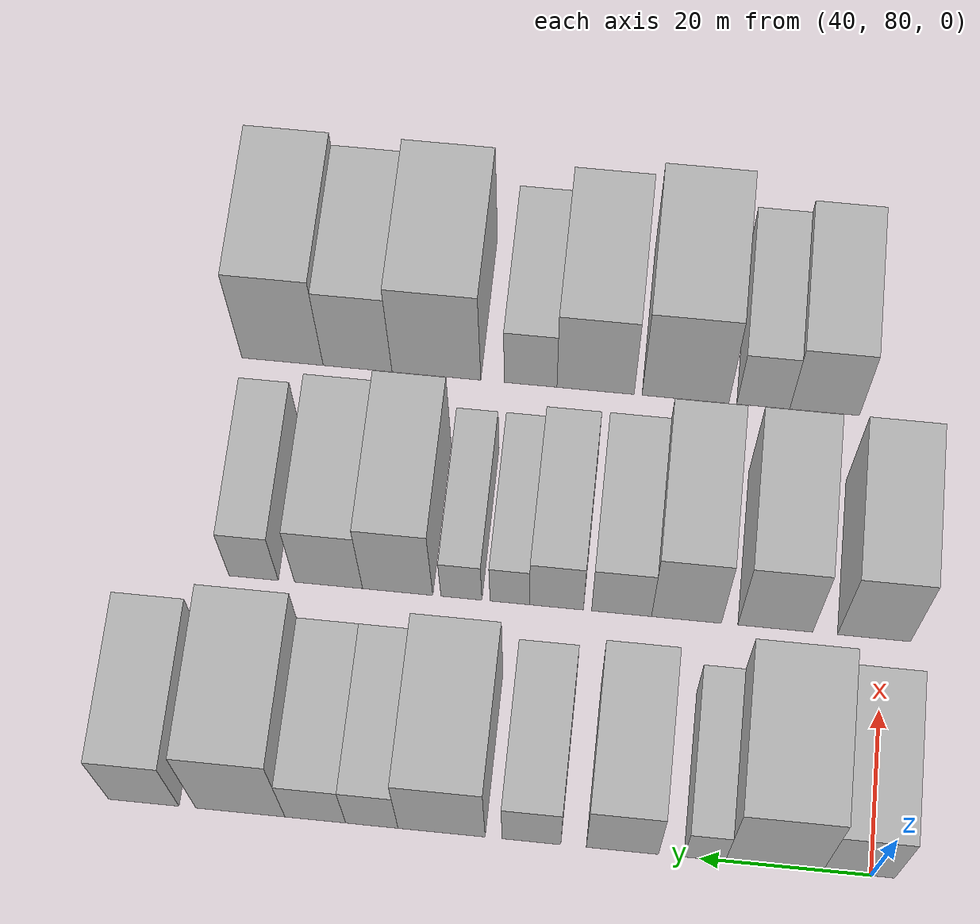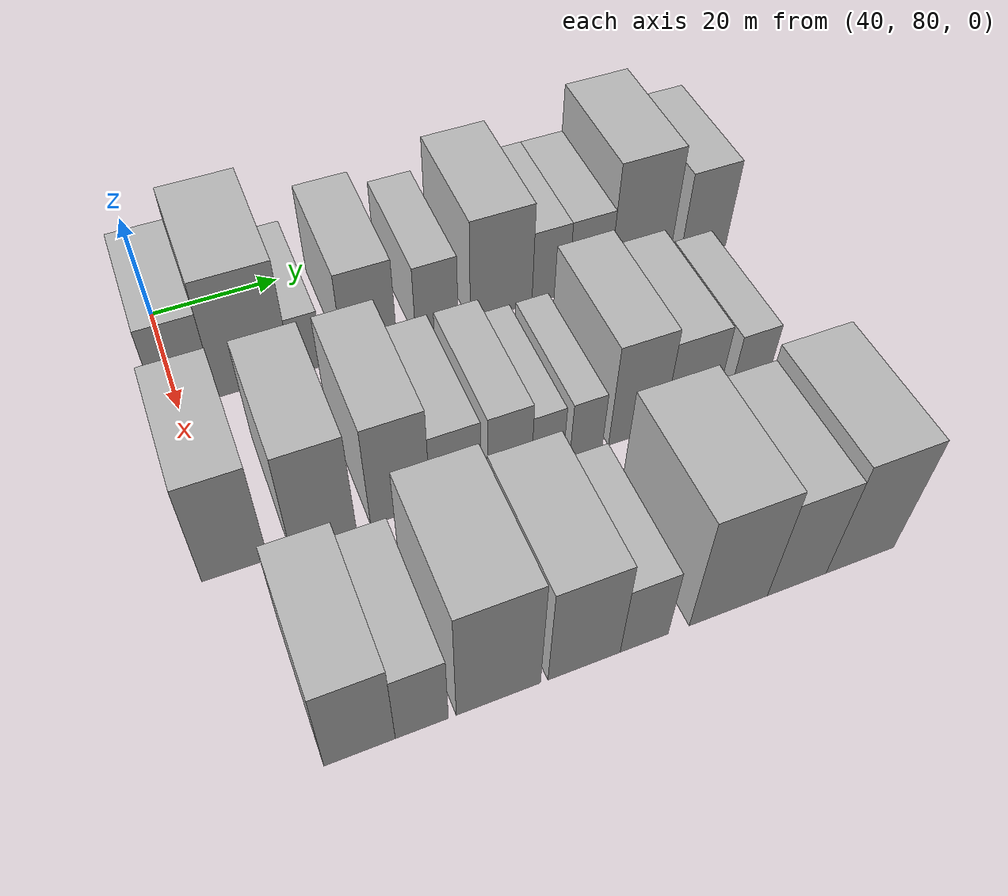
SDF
<sdf version="1.6">
 <world name="default">
  <model name="building_45">
   <static>1</static>
   <pose>50.0000 81.4256 0 0.000000 0.000000 0.000000</pose>
   <link name="link">
    <pose>0 0 9.00 0 0 0</pose>
    <collision name="collision"><geometry><box><size>20.0000 8.3960 18.0000</size></box></geometry></collision>
    <visual name="visual">
     <cast_shadows>0</cast_shadows>
     <geometry><box><size>20.0000 8.3960 18.0000</size></box></geometry>
     <material>
      <script>
       <uri>model://HANNAS_wall/materials/scripts</uri>
       <uri>model://HANNAS_wall/materials/textures</uri>
       <name>vrc/HANNAS_wall</name>
      </script>
     </material>
    </visual>
   </link>
  </model>
  <model name="building_46">
   <static>1</static>
   <pose>50.0000 91.3448 0 0.000000 0.000000 0.000000</pose>
   <link name="link">
    <pose>0 0 12.00 0 0 0</pose>
    <collision name="collision"><geometry><box><size>20.0000 11.4425 24.0000</size></box></geometry></collision>
    <visual name="visual">
     <cast_shadows>0</cast_shadows>
     <geometry><box><size>20.0000 11.4425 24.0000</size></box></geometry>
     <material>
      <script>
       <uri>model://HANNAS_wall/materials/scripts</uri>
       <uri>model://HANNAS_wall/materials/textures</uri>
       <name>vrc/HANNAS_wall</name>
      </script>
     </material>
    </visual>
   </link>
  </model>
  <model name="building_47">
   <static>1</static>
   <pose>50.0000 99.4876 0 0.000000 0.000000 0.000000</pose>
   <link name="link">
    <pose>0 0 6.00 0 0 0</pose>
    <collision name="collision"><geometry><box><size>20.0000 4.8430 12.0000</size></box></geometry></collision>
    <visual name="visual">
     <cast_shadows>0</cast_shadows>
     <geometry><box><size>20.0000 4.8430 12.0000</size></box></geometry>
     <material>
      <script>
       <uri>model://HANNAS_wall/materials/scripts</uri>
       <uri>model://HANNAS_wall/materials/textures</uri>
       <name>vrc/HANNAS_wall</name>
      </script>
     </material>
    </visual>
   </link>
  </model>
  <model name="building_48">
   <static>1</static>
   <pose>50.0000 109.1554 0 0.000000 0.000000 0.000000</pose>
   <link name="link">
    <pose>0 0 9.00 0 0 0</pose>
    <collision name="collision"><geometry><box><size>20.0000 8.4926 18.0000</size></box></geometry></collision>
    <visual name="visual">
     <cast_shadows>0</cast_shadows>
     <geometry><box><size>20.0000 8.4926 18.0000</size></box></geometry>
     <material>
      <script>
       <uri>model://HANNAS_wall/materials/scripts</uri>
       <uri>model://HANNAS_wall/materials/textures</uri>
       <name>vrc/HANNAS_wall</name>
      </script>
     </material>
    </visual>
   </link>
  </model>
  <model name="building_49">
   <static>1</static>
   <pose>50.0000 119.8619 0 0.000000 0.000000 0.000000</pose>
   <link name="link">
    <pose>0 0 7.50 0 0 0</pose>
    <collision name="collision"><geometry><box><size>20.0000 6.9204 15.0000</size></box></geometry></collision>
    <visual name="visual">
     <cast_shadows>0</cast_shadows>
     <geometry><box><size>20.0000 6.9204 15.0000</size></box></geometry>
     <material>
      <script>
       <uri>model://HANNAS_wall/materials/scripts</uri>
       <uri>model://HANNAS_wall/materials/textures</uri>
       <name>vrc/HANNAS_wall</name>
      </script>
     </material>
    </visual>
   </link>
  </model>
  <model name="building_50">
   <static>1</static>
   <pose>50.0000 130.4726 0 0.000000 0.000000 0.000000</pose>
   <link name="link">
    <pose>0 0 10.50 0 0 0</pose>
    <collision name="collision"><geometry><box><size>20.0000 10.3011 21.0000</size></box></geometry></collision>
    <visual name="visual">
     <cast_shadows>0</cast_shadows>
     <geometry><box><size>20.0000 10.3011 21.0000</size></box></geometry>
     <material>
      <script>
       <uri>model://HANNAS_wall/materials/scripts</uri>
       <uri>model://HANNAS_wall/materials/textures</uri>
       <name>vrc/HANNAS_wall</name>
      </script>
     </material>
    </visual>
   </link>
  </model>
  <model name="building_51">
   <static>1</static>
   <pose>50.0000 138.7285 0 0.000000 0.000000 0.000000</pose>
   <link name="link">
    <pose>0 0 7.50 0 0 0</pose>
    <collision name="collision"><geometry><box><size>20.0000 6.2106 15.0000</size></box></geometry></collision>
    <visual name="visual">
     <cast_shadows>0</cast_shadows>
     <geometry><box><size>20.0000 6.2106 15.0000</size></box></geometry>
     <material>
      <script>
       <uri>model://HANNAS_wall/materials/scripts</uri>
       <uri>model://HANNAS_wall/materials/textures</uri>
       <name>vrc/HANNAS_wall</name>
      </script>
     </material>
    </visual>
   </link>
  </model>
  <model name="building_52">
   <static>1</static>
   <pose>50.0000 145.4337 0 0.000000 0.000000 0.000000</pose>
   <link name="link">
    <pose>0 0 7.50 0 0 0</pose>
    <collision name="collision"><geometry><box><size>20.0000 7.1999 15.0000</size></box></geometry></collision>
    <visual name="visual">
     <cast_shadows>0</cast_shadows>
     <geometry><box><size>20.0000 7.1999 15.0000</size></box></geometry>
     <material>
      <script>
       <uri>model://HANNAS_wall/materials/scripts</uri>
       <uri>model://HANNAS_wall/materials/textures</uri>
       <name>vrc/HANNAS_wall</name>
      </script>
     </material>
    </visual>
   </link>
  </model>
  <model name="building_53">
   <static>1</static>
   <pose>50.0000 154.3404 0 0.000000 0.000000 0.000000</pose>
   <link name="link">
    <pose>0 0 12.00 0 0 0</pose>
    <collision name="collision"><geometry><box><size>20.0000 10.6135 24.0000</size></box></geometry></collision>
    <visual name="visual">
     <cast_shadows>0</cast_shadows>
     <geometry><box><size>20.0000 10.6135 24.0000</size></box></geometry>
     <material>
      <script>
       <uri>model://HANNAS_wall/materials/scripts</uri>
       <uri>model://HANNAS_wall/materials/textures</uri>
       <name>vrc/HANNAS_wall</name>
      </script>
     </material>
    </visual>
   </link>
  </model>
  <model name="building_54">
   <static>1</static>
   <pose>50.0000 165.8436 0 0.000000 0.000000 0.000000</pose>
   <link name="link">
    <pose>0 0 9.00 0 0 0</pose>
    <collision name="collision"><geometry><box><size>20.0000 8.3927 18.0000</size></box></geometry></collision>
    <visual name="visual">
     <cast_shadows>0</cast_shadows>
     <geometry><box><size>20.0000 8.3927 18.0000</size></box></geometry>
     <material>
      <script>
       <uri>model://HANNAS_wall/materials/scripts</uri>
       <uri>model://HANNAS_wall/materials/textures</uri>
       <name>vrc/HANNAS_wall</name>
      </script>
     </material>
    </visual>
   </link>
  </model>
  <model name="building_120">
   <static>1</static>
   <pose>79.0000 81.0426 0 0.000000 0.000000 0.000000</pose>
   <link name="link">
    <pose>0 0 10.50 0 0 0</pose>
    <collision name="collision"><geometry><box><size>20.0000 8.8695 21.0000</size></box></geometry></collision>
    <visual name="visual">
     <cast_shadows>0</cast_shadows>
     <geometry><box><size>20.0000 8.8695 21.0000</size></box></geometry>
     <material>
      <script>
       <uri>model://HANNAS_wall/materials/scripts</uri>
       <uri>model://HANNAS_wall/materials/textures</uri>
       <name>vrc/HANNAS_wall</name>
      </script>
     </material>
    </visual>
   </link>
  </model>
  <model name="building_121">
   <static>1</static>
   <pose>79.0000 93.0280 0 0.000000 0.000000 0.000000</pose>
   <link name="link">
    <pose>0 0 10.50 0 0 0</pose>
    <collision name="collision"><geometry><box><size>20.0000 9.1012 21.0000</size></box></geometry></collision>
    <visual name="visual">
     <cast_shadows>0</cast_shadows>
     <geometry><box><size>20.0000 9.1012 21.0000</size></box></geometry>
     <material>
      <script>
       <uri>model://HANNAS_wall/materials/scripts</uri>
       <uri>model://HANNAS_wall/materials/textures</uri>
       <name>vrc/HANNAS_wall</name>
      </script>
     </material>
    </visual>
   </link>
  </model>
  <model name="building_122">
   <static>1</static>
   <pose>79.0000 103.8393 0 0.000000 0.000000 0.000000</pose>
   <link name="link">
    <pose>0 0 10.50 0 0 0</pose>
    <collision name="collision"><geometry><box><size>20.0000 8.5215 21.0000</size></box></geometry></collision>
    <visual name="visual">
     <cast_shadows>0</cast_shadows>
     <geometry><box><size>20.0000 8.5215 21.0000</size></box></geometry>
     <material>
      <script>
       <uri>model://HANNAS_wall/materials/scripts</uri>
       <uri>model://HANNAS_wall/materials/textures</uri>
       <name>vrc/HANNAS_wall</name>
      </script>
     </material>
    </visual>
   </link>
  </model>
  <model name="building_123">
   <static>1</static>
   <pose>79.0000 111.7566 0 0.000000 0.000000 0.000000</pose>
   <link name="link">
    <pose>0 0 7.50 0 0 0</pose>
    <collision name="collision"><geometry><box><size>20.0000 7.3131 15.0000</size></box></geometry></collision>
    <visual name="visual">
     <cast_shadows>0</cast_shadows>
     <geometry><box><size>20.0000 7.3131 15.0000</size></box></geometry>
     <material>
      <script>
       <uri>model://HANNAS_wall/materials/scripts</uri>
       <uri>model://HANNAS_wall/materials/textures</uri>
       <name>vrc/HANNAS_wall</name>
      </script>
     </material>
    </visual>
   </link>
  </model>
  <model name="building_124">
   <static>1</static>
   <pose>79.0000 119.6957 0 0.000000 0.000000 0.000000</pose>
   <link name="link">
    <pose>0 0 7.50 0 0 0</pose>
    <collision name="collision"><geometry><box><size>20.0000 6.5651 15.0000</size></box></geometry></collision>
    <visual name="visual">
     <cast_shadows>0</cast_shadows>
     <geometry><box><size>20.0000 6.5651 15.0000</size></box></geometry>
     <material>
      <script>
       <uri>model://HANNAS_wall/materials/scripts</uri>
       <uri>model://HANNAS_wall/materials/textures</uri>
       <name>vrc/HANNAS_wall</name>
      </script>
     </material>
    </visual>
   </link>
  </model>
  <model name="building_125">
   <static>1</static>
   <pose>79.0000 125.4051 0 0.000000 0.000000 0.000000</pose>
   <link name="link">
    <pose>0 0 6.00 0 0 0</pose>
    <collision name="collision"><geometry><box><size>20.0000 4.8538 12.0000</size></box></geometry></collision>
    <visual name="visual">
     <cast_shadows>0</cast_shadows>
     <geometry><box><size>20.0000 4.8538 12.0000</size></box></geometry>
     <material>
      <script>
       <uri>model://HANNAS_wall/materials/scripts</uri>
       <uri>model://HANNAS_wall/materials/textures</uri>
       <name>vrc/HANNAS_wall</name>
      </script>
     </material>
    </visual>
   </link>
  </model>
  <model name="building_126">
   <static>1</static>
   <pose>79.0000 131.3439 0 0.000000 0.000000 0.000000</pose>
   <link name="link">
    <pose>0 0 6.00 0 0 0</pose>
    <collision name="collision"><geometry><box><size>20.0000 5.0237 12.0000</size></box></geometry></collision>
    <visual name="visual">
     <cast_shadows>0</cast_shadows>
     <geometry><box><size>20.0000 5.0237 12.0000</size></box></geometry>
     <material>
      <script>
       <uri>model://HANNAS_wall/materials/scripts</uri>
       <uri>model://HANNAS_wall/materials/textures</uri>
       <name>vrc/HANNAS_wall</name>
      </script>
     </material>
    </visual>
   </link>
  </model>
  <model name="building_127">
   <static>1</static>
   <pose>79.0000 139.1733 0 0.000000 0.000000 0.000000</pose>
   <link name="link">
    <pose>0 0 10.50 0 0 0</pose>
    <collision name="collision"><geometry><box><size>20.0000 8.6352 21.0000</size></box></geometry></collision>
    <visual name="visual">
     <cast_shadows>0</cast_shadows>
     <geometry><box><size>20.0000 8.6352 21.0000</size></box></geometry>
     <material>
      <script>
       <uri>model://HANNAS_wall/materials/scripts</uri>
       <uri>model://HANNAS_wall/materials/textures</uri>
       <name>vrc/HANNAS_wall</name>
      </script>
     </material>
    </visual>
   </link>
  </model>
  <model name="building_128">
   <static>1</static>
   <pose>79.0000 147.6832 0 0.000000 0.000000 0.000000</pose>
   <link name="link">
    <pose>0 0 9.00 0 0 0</pose>
    <collision name="collision"><geometry><box><size>20.0000 8.3845 18.0000</size></box></geometry></collision>
    <visual name="visual">
     <cast_shadows>0</cast_shadows>
     <geometry><box><size>20.0000 8.3845 18.0000</size></box></geometry>
     <material>
      <script>
       <uri>model://HANNAS_wall/materials/scripts</uri>
       <uri>model://HANNAS_wall/materials/textures</uri>
       <name>vrc/HANNAS_wall</name>
      </script>
     </material>
    </visual>
   </link>
  </model>
  <model name="building_129">
   <static>1</static>
   <pose>79.0000 156.9123 0 0.000000 0.000000 0.000000</pose>
   <link name="link">
    <pose>0 0 7.50 0 0 0</pose>
    <collision name="collision"><geometry><box><size>20.0000 6.0739 15.0000</size></box></geometry></collision>
    <visual name="visual">
     <cast_shadows>0</cast_shadows>
     <geometry><box><size>20.0000 6.0739 15.0000</size></box></geometry>
     <material>
      <script>
       <uri>model://HANNAS_wall/materials/scripts</uri>
       <uri>model://HANNAS_wall/materials/textures</uri>
       <name>vrc/HANNAS_wall</name>
      </script>
     </material>
    </visual>
   </link>
  </model>
  <model name="building_198">
   <static>1</static>
   <pose>108.0000 88.6325 0 0.000000 0.000000 0.000000</pose>
   <link name="link">
    <pose>0 0 9.00 0 0 0</pose>
    <collision name="collision"><geometry><box><size>20.0000 8.7696 18.0000</size></box></geometry></collision>
    <visual name="visual">
     <cast_shadows>0</cast_shadows>
     <geometry><box><size>20.0000 8.7696 18.0000</size></box></geometry>
     <material>
      <script>
       <uri>model://HANNAS_wall/materials/scripts</uri>
       <uri>model://HANNAS_wall/materials/textures</uri>
       <name>vrc/HANNAS_wall</name>
      </script>
     </material>
    </visual>
   </link>
  </model>
  <model name="building_199">
   <static>1</static>
   <pose>108.0000 96.3596 0 0.000000 0.000000 0.000000</pose>
   <link name="link">
    <pose>0 0 7.50 0 0 0</pose>
    <collision name="collision"><geometry><box><size>20.0000 6.6846 15.0000</size></box></geometry></collision>
    <visual name="visual">
     <cast_shadows>0</cast_shadows>
     <geometry><box><size>20.0000 6.6846 15.0000</size></box></geometry>
     <material>
      <script>
       <uri>model://HANNAS_wall/materials/scripts</uri>
       <uri>model://HANNAS_wall/materials/textures</uri>
       <name>vrc/HANNAS_wall</name>
      </script>
     </material>
    </visual>
   </link>
  </model>
  <model name="building_200">
   <static>1</static>
   <pose>108.0000 106.1806 0 0.000000 0.000000 0.000000</pose>
   <link name="link">
    <pose>0 0 12.00 0 0 0</pose>
    <collision name="collision"><geometry><box><size>20.0000 10.9574 24.0000</size></box></geometry></collision>
    <visual name="visual">
     <cast_shadows>0</cast_shadows>
     <geometry><box><size>20.0000 10.9574 24.0000</size></box></geometry>
     <material>
      <script>
       <uri>model://HANNAS_wall/materials/scripts</uri>
       <uri>model://HANNAS_wall/materials/textures</uri>
       <name>vrc/HANNAS_wall</name>
      </script>
     </material>
    </visual>
   </link>
  </model>
  <model name="building_201">
   <static>1</static>
   <pose>108.0000 117.5495 0 0.000000 0.000000 0.000000</pose>
   <link name="link">
    <pose>0 0 10.50 0 0 0</pose>
    <collision name="collision"><geometry><box><size>20.0000 9.7804 21.0000</size></box></geometry></collision>
    <visual name="visual">
     <cast_shadows>0</cast_shadows>
     <geometry><box><size>20.0000 9.7804 21.0000</size></box></geometry>
     <material>
      <script>
       <uri>model://HANNAS_wall/materials/scripts</uri>
       <uri>model://HANNAS_wall/materials/textures</uri>
       <name>vrc/HANNAS_wall</name>
      </script>
     </material>
    </visual>
   </link>
  </model>
  <model name="building_202">
   <static>1</static>
   <pose>108.0000 125.7709 0 0.000000 0.000000 0.000000</pose>
   <link name="link">
    <pose>0 0 7.50 0 0 0</pose>
    <collision name="collision"><geometry><box><size>20.0000 6.6623 15.0000</size></box></geometry></collision>
    <visual name="visual">
     <cast_shadows>0</cast_shadows>
     <geometry><box><size>20.0000 6.6623 15.0000</size></box></geometry>
     <material>
      <script>
       <uri>model://HANNAS_wall/materials/scripts</uri>
       <uri>model://HANNAS_wall/materials/textures</uri>
       <name>vrc/HANNAS_wall</name>
      </script>
     </material>
    </visual>
   </link>
  </model>
  <model name="building_203">
   <static>1</static>
   <pose>108.0000 137.7520 0 0.000000 0.000000 0.000000</pose>
   <link name="link">
    <pose>0 0 12.00 0 0 0</pose>
    <collision name="collision"><geometry><box><size>20.0000 11.2999 24.0000</size></box></geometry></collision>
    <visual name="visual">
     <cast_shadows>0</cast_shadows>
     <geometry><box><size>20.0000 11.2999 24.0000</size></box></geometry>
     <material>
      <script>
       <uri>model://HANNAS_wall/materials/scripts</uri>
       <uri>model://HANNAS_wall/materials/textures</uri>
       <name>vrc/HANNAS_wall</name>
      </script>
     </material>
    </visual>
   </link>
  </model>
  <model name="building_204">
   <static>1</static>
   <pose>108.0000 147.7930 0 0.000000 0.000000 0.000000</pose>
   <link name="link">
    <pose>0 0 10.50 0 0 0</pose>
    <collision name="collision"><geometry><box><size>20.0000 8.7821 21.0000</size></box></geometry></collision>
    <visual name="visual">
     <cast_shadows>0</cast_shadows>
     <geometry><box><size>20.0000 8.7821 21.0000</size></box></geometry>
     <material>
      <script>
       <uri>model://HANNAS_wall/materials/scripts</uri>
       <uri>model://HANNAS_wall/materials/textures</uri>
       <name>vrc/HANNAS_wall</name>
      </script>
     </material>
    </visual>
   </link>
  </model>
  <model name="building_205">
   <static>1</static>
   <pose>108.0000 157.3714 0 0.000000 0.000000 0.000000</pose>
   <link name="link">
    <pose>0 0 12.00 0 0 0</pose>
    <collision name="collision"><geometry><box><size>20.0000 10.3748 24.0000</size></box></geometry></collision>
    <visual name="visual">
     <cast_shadows>0</cast_shadows>
     <geometry><box><size>20.0000 10.3748 24.0000</size></box></geometry>
     <material>
      <script>
       <uri>model://HANNAS_wall/materials/scripts</uri>
       <uri>model://HANNAS_wall/materials/textures</uri>
       <name>vrc/HANNAS_wall</name>
      </script>
     </material>
    </visual>
   </link>
  </model>
 </world>
</sdf>
